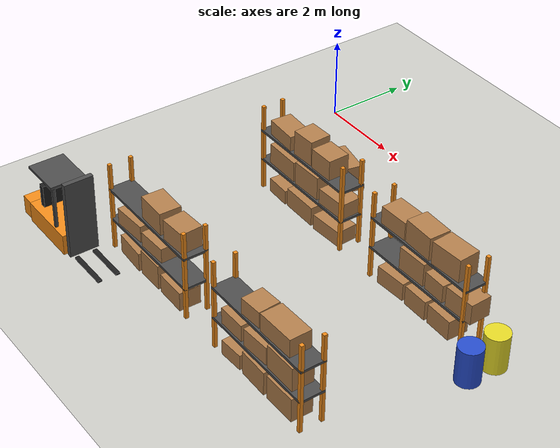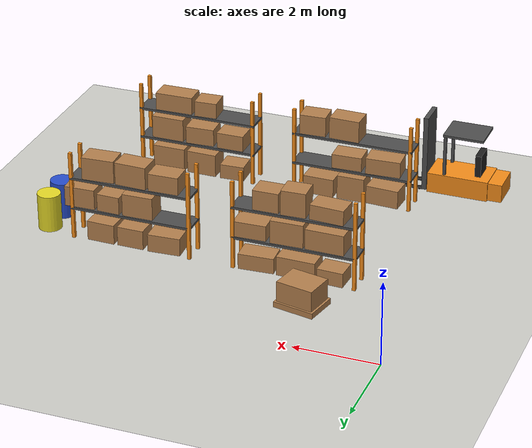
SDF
<sdf version="1.6">
 <world name="warehouse_w2_low_dynamic">
  <model name="ground_plane">
   <static>true</static>
   <link name="link">
    <collision name="collision">
     <geometry><plane><normal>0 0 1</normal><size>25 25</size></plane></geometry>
     <surface><friction><ode><mu>100</mu><mu2>50</mu2></ode></friction></surface>
    </collision>
    <visual name="visual">
     <geometry><plane><normal>0 0 1</normal><size>25 25</size></plane></geometry>
     <material>
      <script><uri>file://media/materials/scripts/gazebo.material</uri><name>Gazebo/CeilingTiled</name></script>
     </material>
    </visual>
   </link>
  </model>
  <model name="rack_r3_c">
   <static>true</static>
   <pose>3 -3 0 0 0 0</pose>
   <link name="link">
    <collision name="col">
     <pose>0 0 1.1 0 0 0</pose>
     <geometry><box><size>3.0 0.6 2.2</size></box></geometry>
    </collision>
    <visual name="up_-1-0">
     <pose>-1.460 -0.260 1.100 0 0 0.000</pose>
     <geometry><box><size>0.080 0.080 2.200</size></box></geometry>
     <material>
      <script><uri>file://media/materials/scripts/gazebo.material</uri><name>Gazebo/Orange</name></script>
     </material>
    </visual>
    <visual name="up_-1+0">
     <pose>-1.460 0.260 1.100 0 0 0.000</pose>
     <geometry><box><size>0.080 0.080 2.200</size></box></geometry>
     <material>
      <script><uri>file://media/materials/scripts/gazebo.material</uri><name>Gazebo/Orange</name></script>
     </material>
    </visual>
    <visual name="up_+1-0">
     <pose>1.460 -0.260 1.100 0 0 0.000</pose>
     <geometry><box><size>0.080 0.080 2.200</size></box></geometry>
     <material>
      <script><uri>file://media/materials/scripts/gazebo.material</uri><name>Gazebo/Orange</name></script>
     </material>
    </visual>
    <visual name="up_+1+0">
     <pose>1.460 0.260 1.100 0 0 0.000</pose>
     <geometry><box><size>0.080 0.080 2.200</size></box></geometry>
     <material>
      <script><uri>file://media/materials/scripts/gazebo.material</uri><name>Gazebo/Orange</name></script>
     </material>
    </visual>
    <visual name="s1">
     <pose>0.000 0.000 0.780 0 0 0.000</pose>
     <geometry><box><size>3.000 0.600 0.060</size></box></geometry>
     <material>
      <script><uri>file://media/materials/scripts/gazebo.material</uri><name>Gazebo/DarkGrey</name></script>
     </material>
    </visual>
    <visual name="s2">
     <pose>0.000 0.000 1.550 0 0 0.000</pose>
     <geometry><box><size>3.000 0.600 0.060</size></box></geometry>
     <material>
      <script><uri>file://media/materials/scripts/gazebo.material</uri><name>Gazebo/DarkGrey</name></script>
     </material>
    </visual>
    <visual name="box_f0">
     <pose>-0.885 0.000 0.178 0 0 -0.045</pose>
     <geometry><box><size>0.630 0.520 0.356</size></box></geometry>
     <material>
      <script><uri>file://media/materials/scripts/gazebo.material</uri><name>Gazebo/WoodPallet</name></script>
     </material>
    </visual>
    <visual name="box_f1">
     <pose>-0.057 0.000 0.238 0 0 -0.016</pose>
     <geometry><box><size>0.929 0.520 0.476</size></box></geometry>
     <material>
      <script><uri>file://media/materials/scripts/gazebo.material</uri><name>Gazebo/WoodPallet</name></script>
     </material>
    </visual>
    <visual name="box_f2">
     <pose>0.921 0.000 0.190 0 0 0.056</pose>
     <geometry><box><size>0.849 0.520 0.381</size></box></geometry>
     <material>
      <script><uri>file://media/materials/scripts/gazebo.material</uri><name>Gazebo/WoodPallet</name></script>
     </material>
    </visual>
    <visual name="box_a0">
     <pose>-0.739 0.000 1.063 0 0 -0.015</pose>
     <geometry><box><size>0.922 0.520 0.505</size></box></geometry>
     <material>
      <script><uri>file://media/materials/scripts/gazebo.material</uri><name>Gazebo/WoodPallet</name></script>
     </material>
    </visual>
    <visual name="box_a1">
     <pose>0.171 0.000 1.097 0 0 0.024</pose>
     <geometry><box><size>0.787 0.520 0.574</size></box></geometry>
     <material>
      <script><uri>file://media/materials/scripts/gazebo.material</uri><name>Gazebo/Wood</name></script>
     </material>
    </visual>
    <visual name="box_a2">
     <pose>1.067 0.000 1.001 0 0 0.034</pose>
     <geometry><box><size>0.790 0.520 0.383</size></box></geometry>
     <material>
      <script><uri>file://media/materials/scripts/gazebo.material</uri><name>Gazebo/Wood</name></script>
     </material>
    </visual>
    <visual name="box_b0">
     <pose>-0.793 0.000 1.764 0 0 -0.058</pose>
     <geometry><box><size>0.815 0.520 0.369</size></box></geometry>
     <material>
      <script><uri>file://media/materials/scripts/gazebo.material</uri><name>Gazebo/Wood</name></script>
     </material>
    </visual>
    <visual name="box_b1">
     <pose>0.017 0.000 1.885 0 0 0.039</pose>
     <geometry><box><size>0.592 0.520 0.609</size></box></geometry>
     <material>
      <script><uri>file://media/materials/scripts/gazebo.material</uri><name>Gazebo/WoodPallet</name></script>
     </material>
    </visual>
    <visual name="box_b2">
     <pose>0.675 0.000 1.825 0 0 0.014</pose>
     <geometry><box><size>0.620 0.520 0.491</size></box></geometry>
     <material>
      <script><uri>file://media/materials/scripts/gazebo.material</uri><name>Gazebo/WoodPallet</name></script>
     </material>
    </visual>
   </link>
  </model>
  <model name="rack_r3_d">
   <static>true</static>
   <pose>7 -3 0 0 0 0</pose>
   <link name="link">
    <collision name="col">
     <pose>0 0 1.1 0 0 0</pose>
     <geometry><box><size>3.0 0.6 2.2</size></box></geometry>
    </collision>
    <visual name="up_-1-0">
     <pose>-1.460 -0.260 1.100 0 0 0.000</pose>
     <geometry><box><size>0.080 0.080 2.200</size></box></geometry>
     <material>
      <script><uri>file://media/materials/scripts/gazebo.material</uri><name>Gazebo/Orange</name></script>
     </material>
    </visual>
    <visual name="up_-1+0">
     <pose>-1.460 0.260 1.100 0 0 0.000</pose>
     <geometry><box><size>0.080 0.080 2.200</size></box></geometry>
     <material>
      <script><uri>file://media/materials/scripts/gazebo.material</uri><name>Gazebo/Orange</name></script>
     </material>
    </visual>
    <visual name="up_+1-0">
     <pose>1.460 -0.260 1.100 0 0 0.000</pose>
     <geometry><box><size>0.080 0.080 2.200</size></box></geometry>
     <material>
      <script><uri>file://media/materials/scripts/gazebo.material</uri><name>Gazebo/Orange</name></script>
     </material>
    </visual>
    <visual name="up_+1+0">
     <pose>1.460 0.260 1.100 0 0 0.000</pose>
     <geometry><box><size>0.080 0.080 2.200</size></box></geometry>
     <material>
      <script><uri>file://media/materials/scripts/gazebo.material</uri><name>Gazebo/Orange</name></script>
     </material>
    </visual>
    <visual name="s1">
     <pose>0.000 0.000 0.780 0 0 0.000</pose>
     <geometry><box><size>3.000 0.600 0.060</size></box></geometry>
     <material>
      <script><uri>file://media/materials/scripts/gazebo.material</uri><name>Gazebo/DarkGrey</name></script>
     </material>
    </visual>
    <visual name="s2">
     <pose>0.000 0.000 1.550 0 0 0.000</pose>
     <geometry><box><size>3.000 0.600 0.060</size></box></geometry>
     <material>
      <script><uri>file://media/materials/scripts/gazebo.material</uri><name>Gazebo/DarkGrey</name></script>
     </material>
    </visual>
    <visual name="box_f0">
     <pose>-0.807 0.000 0.219 0 0 0.052</pose>
     <geometry><box><size>0.787 0.520 0.437</size></box></geometry>
     <material>
      <script><uri>file://media/materials/scripts/gazebo.material</uri><name>Gazebo/Wood</name></script>
     </material>
    </visual>
    <visual name="box_f1">
     <pose>0.021 0.000 0.238 0 0 -0.015</pose>
     <geometry><box><size>0.648 0.520 0.475</size></box></geometry>
     <material>
      <script><uri>file://media/materials/scripts/gazebo.material</uri><name>Gazebo/WoodPallet</name></script>
     </material>
    </visual>
    <visual name="box_f2">
     <pose>0.765 0.000 0.241 0 0 -0.029</pose>
     <geometry><box><size>0.680 0.520 0.482</size></box></geometry>
     <material>
      <script><uri>file://media/materials/scripts/gazebo.material</uri><name>Gazebo/Wood</name></script>
     </material>
    </visual>
    <visual name="box_a1">
     <pose>-0.176 0.000 1.087 0 0 0.018</pose>
     <geometry><box><size>0.745 0.520 0.555</size></box></geometry>
     <material>
      <script><uri>file://media/materials/scripts/gazebo.material</uri><name>Gazebo/Wood</name></script>
     </material>
    </visual>
    <visual name="box_a2">
     <pose>0.551 0.000 1.025 0 0 -0.031</pose>
     <geometry><box><size>0.557 0.520 0.429</size></box></geometry>
     <material>
      <script><uri>file://media/materials/scripts/gazebo.material</uri><name>Gazebo/WoodPallet</name></script>
     </material>
    </visual>
    <visual name="box_a3">
     <pose>1.286 0.000 1.057 0 0 0.030</pose>
     <geometry><box><size>0.739 0.520 0.493</size></box></geometry>
     <material>
      <script><uri>file://media/materials/scripts/gazebo.material</uri><name>Gazebo/Wood</name></script>
     </material>
    </visual>
    <visual name="box_b0">
     <pose>-0.834 0.000 1.796 0 0 0.027</pose>
     <geometry><box><size>0.731 0.520 0.433</size></box></geometry>
     <material>
      <script><uri>file://media/materials/scripts/gazebo.material</uri><name>Gazebo/Wood</name></script>
     </material>
    </visual>
    <visual name="box_b1">
     <pose>-0.037 0.000 1.858 0 0 -0.034</pose>
     <geometry><box><size>0.764 0.520 0.556</size></box></geometry>
     <material>
      <script><uri>file://media/materials/scripts/gazebo.material</uri><name>Gazebo/Wood</name></script>
     </material>
    </visual>
    <visual name="box_b2">
     <pose>0.800 0.000 1.858 0 0 0.058</pose>
     <geometry><box><size>0.786 0.520 0.555</size></box></geometry>
     <material>
      <script><uri>file://media/materials/scripts/gazebo.material</uri><name>Gazebo/WoodPallet</name></script>
     </material>
    </visual>
   </link>
  </model>
  <model name="rack_r4_c">
   <static>true</static>
   <pose>3 -7 0 0 0 0</pose>
   <link name="link">
    <collision name="col">
     <pose>0 0 1.1 0 0 0</pose>
     <geometry><box><size>3.0 0.6 2.2</size></box></geometry>
    </collision>
    <visual name="up_-1-0">
     <pose>-1.460 -0.260 1.100 0 0 0.000</pose>
     <geometry><box><size>0.080 0.080 2.200</size></box></geometry>
     <material>
      <script><uri>file://media/materials/scripts/gazebo.material</uri><name>Gazebo/Orange</name></script>
     </material>
    </visual>
    <visual name="up_-1+0">
     <pose>-1.460 0.260 1.100 0 0 0.000</pose>
     <geometry><box><size>0.080 0.080 2.200</size></box></geometry>
     <material>
      <script><uri>file://media/materials/scripts/gazebo.material</uri><name>Gazebo/Orange</name></script>
     </material>
    </visual>
    <visual name="up_+1-0">
     <pose>1.460 -0.260 1.100 0 0 0.000</pose>
     <geometry><box><size>0.080 0.080 2.200</size></box></geometry>
     <material>
      <script><uri>file://media/materials/scripts/gazebo.material</uri><name>Gazebo/Orange</name></script>
     </material>
    </visual>
    <visual name="up_+1+0">
     <pose>1.460 0.260 1.100 0 0 0.000</pose>
     <geometry><box><size>0.080 0.080 2.200</size></box></geometry>
     <material>
      <script><uri>file://media/materials/scripts/gazebo.material</uri><name>Gazebo/Orange</name></script>
     </material>
    </visual>
    <visual name="s1">
     <pose>0.000 0.000 0.780 0 0 0.000</pose>
     <geometry><box><size>3.000 0.600 0.060</size></box></geometry>
     <material>
      <script><uri>file://media/materials/scripts/gazebo.material</uri><name>Gazebo/DarkGrey</name></script>
     </material>
    </visual>
    <visual name="s2">
     <pose>0.000 0.000 1.550 0 0 0.000</pose>
     <geometry><box><size>3.000 0.600 0.060</size></box></geometry>
     <material>
      <script><uri>file://media/materials/scripts/gazebo.material</uri><name>Gazebo/DarkGrey</name></script>
     </material>
    </visual>
    <visual name="box_f0">
     <pose>-0.792 0.000 0.229 0 0 -0.056</pose>
     <geometry><box><size>0.815 0.520 0.458</size></box></geometry>
     <material>
      <script><uri>file://media/materials/scripts/gazebo.material</uri><name>Gazebo/WoodPallet</name></script>
     </material>
    </visual>
    <visual name="box_f1">
     <pose>0.020 0.000 0.306 0 0 0.002</pose>
     <geometry><box><size>0.679 0.520 0.612</size></box></geometry>
     <material>
      <script><uri>file://media/materials/scripts/gazebo.material</uri><name>Gazebo/WoodPallet</name></script>
     </material>
    </visual>
    <visual name="box_f2">
     <pose>0.836 0.000 0.231 0 0 -0.017</pose>
     <geometry><box><size>0.767 0.520 0.462</size></box></geometry>
     <material>
      <script><uri>file://media/materials/scripts/gazebo.material</uri><name>Gazebo/Wood</name></script>
     </material>
    </visual>
    <visual name="box_a0">
     <pose>-0.773 0.000 1.012 0 0 0.051</pose>
     <geometry><box><size>0.854 0.520 0.405</size></box></geometry>
     <material>
      <script><uri>file://media/materials/scripts/gazebo.material</uri><name>Gazebo/Wood</name></script>
     </material>
    </visual>
    <visual name="box_a1">
     <pose>0.136 0.000 0.989 0 0 0.036</pose>
     <geometry><box><size>0.744 0.520 0.358</size></box></geometry>
     <material>
      <script><uri>file://media/materials/scripts/gazebo.material</uri><name>Gazebo/WoodPallet</name></script>
     </material>
    </visual>
    <visual name="box_b1">
     <pose>0.196 0.000 1.852 0 0 -0.027</pose>
     <geometry><box><size>0.749 0.520 0.543</size></box></geometry>
     <material>
      <script><uri>file://media/materials/scripts/gazebo.material</uri><name>Gazebo/Wood</name></script>
     </material>
    </visual>
    <visual name="box_b2">
     <pose>1.013 0.000 1.829 0 0 0.051</pose>
     <geometry><box><size>0.647 0.520 0.499</size></box></geometry>
     <material>
      <script><uri>file://media/materials/scripts/gazebo.material</uri><name>Gazebo/WoodPallet</name></script>
     </material>
    </visual>
   </link>
  </model>
  <model name="rack_r4_d">
   <static>true</static>
   <pose>7 -7 0 0 0 0</pose>
   <link name="link">
    <collision name="col">
     <pose>0 0 1.1 0 0 0</pose>
     <geometry><box><size>3.0 0.6 2.2</size></box></geometry>
    </collision>
    <visual name="up_-1-0">
     <pose>-1.460 -0.260 1.100 0 0 0.000</pose>
     <geometry><box><size>0.080 0.080 2.200</size></box></geometry>
     <material>
      <script><uri>file://media/materials/scripts/gazebo.material</uri><name>Gazebo/Orange</name></script>
     </material>
    </visual>
    <visual name="up_-1+0">
     <pose>-1.460 0.260 1.100 0 0 0.000</pose>
     <geometry><box><size>0.080 0.080 2.200</size></box></geometry>
     <material>
      <script><uri>file://media/materials/scripts/gazebo.material</uri><name>Gazebo/Orange</name></script>
     </material>
    </visual>
    <visual name="up_+1-0">
     <pose>1.460 -0.260 1.100 0 0 0.000</pose>
     <geometry><box><size>0.080 0.080 2.200</size></box></geometry>
     <material>
      <script><uri>file://media/materials/scripts/gazebo.material</uri><name>Gazebo/Orange</name></script>
     </material>
    </visual>
    <visual name="up_+1+0">
     <pose>1.460 0.260 1.100 0 0 0.000</pose>
     <geometry><box><size>0.080 0.080 2.200</size></box></geometry>
     <material>
      <script><uri>file://media/materials/scripts/gazebo.material</uri><name>Gazebo/Orange</name></script>
     </material>
    </visual>
    <visual name="s1">
     <pose>0.000 0.000 0.780 0 0 0.000</pose>
     <geometry><box><size>3.000 0.600 0.060</size></box></geometry>
     <material>
      <script><uri>file://media/materials/scripts/gazebo.material</uri><name>Gazebo/DarkGrey</name></script>
     </material>
    </visual>
    <visual name="s2">
     <pose>0.000 0.000 1.550 0 0 0.000</pose>
     <geometry><box><size>3.000 0.600 0.060</size></box></geometry>
     <material>
      <script><uri>file://media/materials/scripts/gazebo.material</uri><name>Gazebo/DarkGrey</name></script>
     </material>
    </visual>
    <visual name="box_f0">
     <pose>-0.898 0.000 0.184 0 0 0.043</pose>
     <geometry><box><size>0.605 0.520 0.369</size></box></geometry>
     <material>
      <script><uri>file://media/materials/scripts/gazebo.material</uri><name>Gazebo/Wood</name></script>
     </material>
    </visual>
    <visual name="box_f1">
     <pose>-0.104 0.000 0.286 0 0 -0.024</pose>
     <geometry><box><size>0.753 0.520 0.572</size></box></geometry>
     <material>
      <script><uri>file://media/materials/scripts/gazebo.material</uri><name>Gazebo/WoodPallet</name></script>
     </material>
    </visual>
    <visual name="box_f2">
     <pose>0.766 0.000 0.292 0 0 -0.002</pose>
     <geometry><box><size>0.814 0.520 0.584</size></box></geometry>
     <material>
      <script><uri>file://media/materials/scripts/gazebo.material</uri><name>Gazebo/Wood</name></script>
     </material>
    </visual>
    <visual name="box_a0">
     <pose>-0.861 0.000 1.010 0 0 0.009</pose>
     <geometry><box><size>0.679 0.520 0.401</size></box></geometry>
     <material>
      <script><uri>file://media/materials/scripts/gazebo.material</uri><name>Gazebo/WoodPallet</name></script>
     </material>
    </visual>
    <visual name="box_a1">
     <pose>-0.056 0.000 1.028 0 0 0.050</pose>
     <geometry><box><size>0.714 0.520 0.436</size></box></geometry>
     <material>
      <script><uri>file://media/materials/scripts/gazebo.material</uri><name>Gazebo/Wood</name></script>
     </material>
    </visual>
    <visual name="box_a2">
     <pose>0.780 0.000 1.096 0 0 -0.001</pose>
     <geometry><box><size>0.815 0.520 0.572</size></box></geometry>
     <material>
      <script><uri>file://media/materials/scripts/gazebo.material</uri><name>Gazebo/WoodPallet</name></script>
     </material>
    </visual>
    <visual name="box_b1">
     <pose>-0.219 0.000 1.774 0 0 0.056</pose>
     <geometry><box><size>0.556 0.520 0.389</size></box></geometry>
     <material>
      <script><uri>file://media/materials/scripts/gazebo.material</uri><name>Gazebo/WoodPallet</name></script>
     </material>
    </visual>
    <visual name="box_b2">
     <pose>0.606 0.000 1.801 0 0 0.018</pose>
     <geometry><box><size>0.938 0.520 0.441</size></box></geometry>
     <material>
      <script><uri>file://media/materials/scripts/gazebo.material</uri><name>Gazebo/Wood</name></script>
     </material>
    </visual>
   </link>
  </model>
  <model name="pallet_1">
   <static>true</static>
   <pose>2.4 -1.7 0 0 0 -0.2</pose>
   <link name="link">
    <collision name="col">
     <pose>0 0 0.25 0 0 0</pose>
     <geometry><box><size>1.0 0.8 0.5</size></box></geometry>
    </collision>
    <visual name="base">
     <pose>0.000 0.000 0.070 0 0 0.000</pose>
     <geometry><box><size>1.000 0.800 0.140</size></box></geometry>
     <material>
      <script><uri>file://media/materials/scripts/gazebo.material</uri><name>Gazebo/WoodPallet</name></script>
     </material>
    </visual>
    <visual name="load">
     <pose>0.000 0.000 0.390 0 0 0.000</pose>
     <geometry><box><size>0.900 0.700 0.500</size></box></geometry>
     <material>
      <script><uri>file://media/materials/scripts/gazebo.material</uri><name>Gazebo/Wood</name></script>
     </material>
    </visual>
   </link>
  </model>
  <model name="drum_0">
   <static>true</static>
   <pose>9.2 -3.0 0 0 0 0</pose>
   <link name="link">
    <collision name="col">
     <pose>0 0 0.45 0 0 0</pose>
     <geometry><cylinder><radius>0.28</radius><length>0.9</length></cylinder></geometry>
    </collision>
    <visual name="vis">
     <pose>0 0 0.45 0 0 0</pose>
     <geometry><cylinder><radius>0.28</radius><length>0.9</length></cylinder></geometry>
     <material>
      <script><uri>file://media/materials/scripts/gazebo.material</uri><name>Gazebo/Yellow</name></script>
     </material>
    </visual>
   </link>
  </model>
  <model name="drum_1">
   <static>true</static>
   <pose>9.2 -3.7 0 0 0 0</pose>
   <link name="link">
    <collision name="col">
     <pose>0 0 0.45 0 0 0</pose>
     <geometry><cylinder><radius>0.28</radius><length>0.9</length></cylinder></geometry>
    </collision>
    <visual name="vis">
     <pose>0 0 0.45 0 0 0</pose>
     <geometry><cylinder><radius>0.28</radius><length>0.9</length></cylinder></geometry>
     <material>
      <script><uri>file://media/materials/scripts/gazebo.material</uri><name>Gazebo/Blue</name></script>
     </material>
    </visual>
   </link>
  </model>
  <model name="forklift_1">
   <static>true</static>
   <pose>0.6 -8.0 0 0 0 0</pose>
   <link name="body">
    <collision name="col">
     <pose>0.2 0 0.6 0 0 0</pose>
     <geometry><box><size>2.4 0.9 1.2</size></box></geometry>
    </collision>
    <visual name="chassis">
     <pose>0.000 0.000 0.400 0 0 0.000</pose>
     <geometry><box><size>1.500 0.850 0.500</size></box></geometry>
     <material>
      <script><uri>file://media/materials/scripts/gazebo.material</uri><name>Gazebo/Orange</name></script>
     </material>
    </visual>
    <visual name="counterweight">
     <pose>-0.850 0.000 0.400 0 0 0.000</pose>
     <geometry><box><size>0.500 0.800 0.450</size></box></geometry>
     <material>
      <script><uri>file://media/materials/scripts/gazebo.material</uri><name>Gazebo/Orange</name></script>
     </material>
    </visual>
    <visual name="mast">
     <pose>0.850 0.000 1.100 0 0 0.000</pose>
     <geometry><box><size>0.120 0.700 1.900</size></box></geometry>
     <material>
      <script><uri>file://media/materials/scripts/gazebo.material</uri><name>Gazebo/DarkGrey</name></script>
     </material>
    </visual>
    <visual name="fork_l">
     <pose>1.450 0.220 0.120 0 0 0.000</pose>
     <geometry><box><size>1.000 0.100 0.050</size></box></geometry>
     <material>
      <script><uri>file://media/materials/scripts/gazebo.material</uri><name>Gazebo/Black</name></script>
     </material>
    </visual>
    <visual name="fork_r">
     <pose>1.450 -0.220 0.120 0 0 0.000</pose>
     <geometry><box><size>1.000 0.100 0.050</size></box></geometry>
     <material>
      <script><uri>file://media/materials/scripts/gazebo.material</uri><name>Gazebo/Black</name></script>
     </material>
    </visual>
    <visual name="guard_post_l">
     <pose>0.350 0.350 1.150 0 0 0.000</pose>
     <geometry><box><size>0.070 0.070 1.000</size></box></geometry>
     <material>
      <script><uri>file://media/materials/scripts/gazebo.material</uri><name>Gazebo/DarkGrey</name></script>
     </material>
    </visual>
    <visual name="guard_post_r">
     <pose>0.350 -0.350 1.150 0 0 0.000</pose>
     <geometry><box><size>0.070 0.070 1.000</size></box></geometry>
     <material>
      <script><uri>file://media/materials/scripts/gazebo.material</uri><name>Gazebo/DarkGrey</name></script>
     </material>
    </visual>
    <visual name="roof">
     <pose>-0.100 0.000 1.700 0 0 0.000</pose>
     <geometry><box><size>1.000 0.850 0.060</size></box></geometry>
     <material>
      <script><uri>file://media/materials/scripts/gazebo.material</uri><name>Gazebo/DarkGrey</name></script>
     </material>
    </visual>
    <visual name="seatback">
     <pose>-0.450 0.000 0.950 0 0 0.000</pose>
     <geometry><box><size>0.150 0.500 0.550</size></box></geometry>
     <material>
      <script><uri>file://media/materials/scripts/gazebo.material</uri><name>Gazebo/Black</name></script>
     </material>
    </visual>
   </link>
  </model>
 </world>
</sdf>
